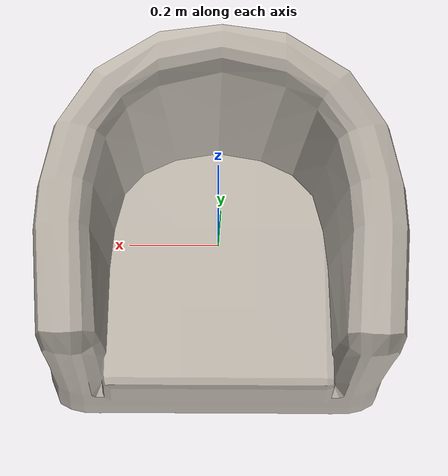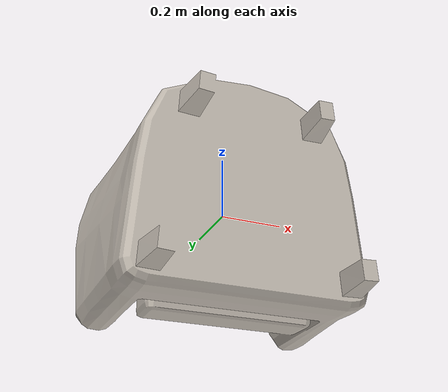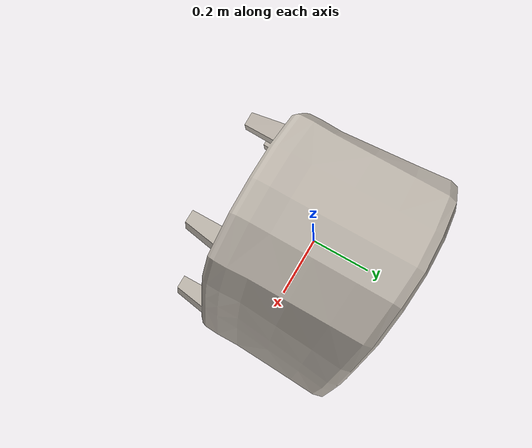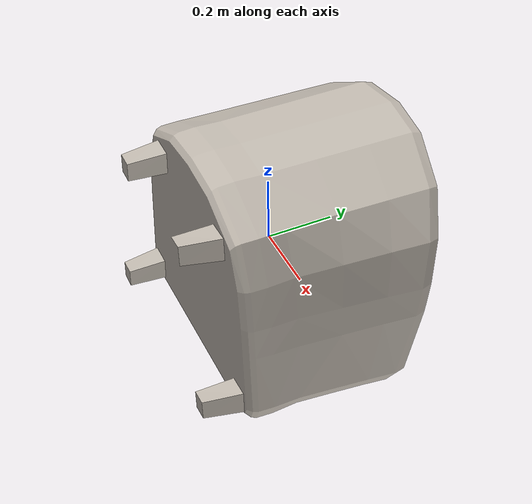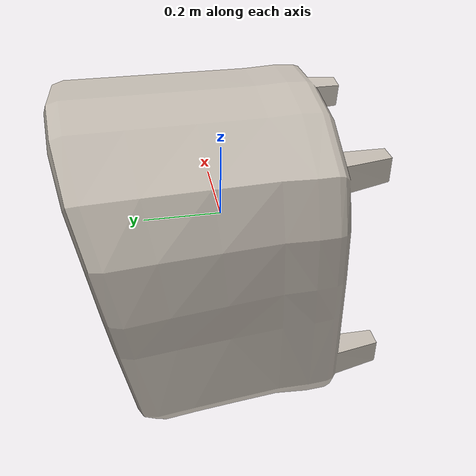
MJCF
<mujoco model="frl_apartment_chair_01">
  <asset>
    <texture type="2d" name="Material_419" file="Material_419.png"/>
    <material name="Material_419" texture="Material_419" specular="0.5" shininess="0.5"/>
    <mesh file="frl_apartment_chair_01.obj" name="frl_apartment_chair_01_mesh" scale="1.0 1.0 1.0"/>
  </asset>
  <worldbody>
    <body>
      <body name="object">
        <geom solimp="0.998 0.998 0.001" solref="0.001 1" density="500" friction="0.95 0.3 0.1" type="mesh" mesh="frl_apartment_chair_01_mesh" conaffinity="1" contype="1" group="1" material="Material_419"/>
      </body>
      <site rgba="0 0 0 0" size="0.005" pos="0 0 0" name="bottom_site"/>
      <site rgba="0 0 0 0" size="0.005" pos="0 0 0.9" name="top_site"/>
      <site rgba="0 0 0 0" size="0.005" pos="0.25 0.25 0.45" name="horizontal_radius_site"/>
    </body>
  </worldbody>
</mujoco>
